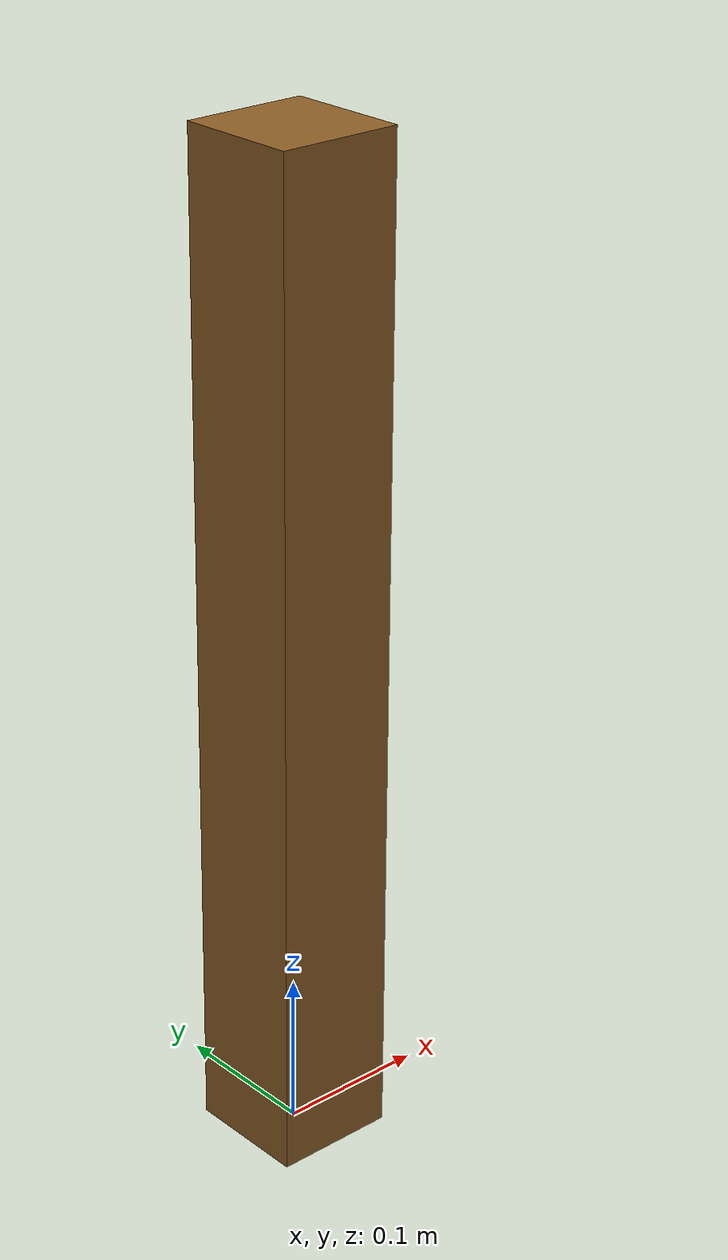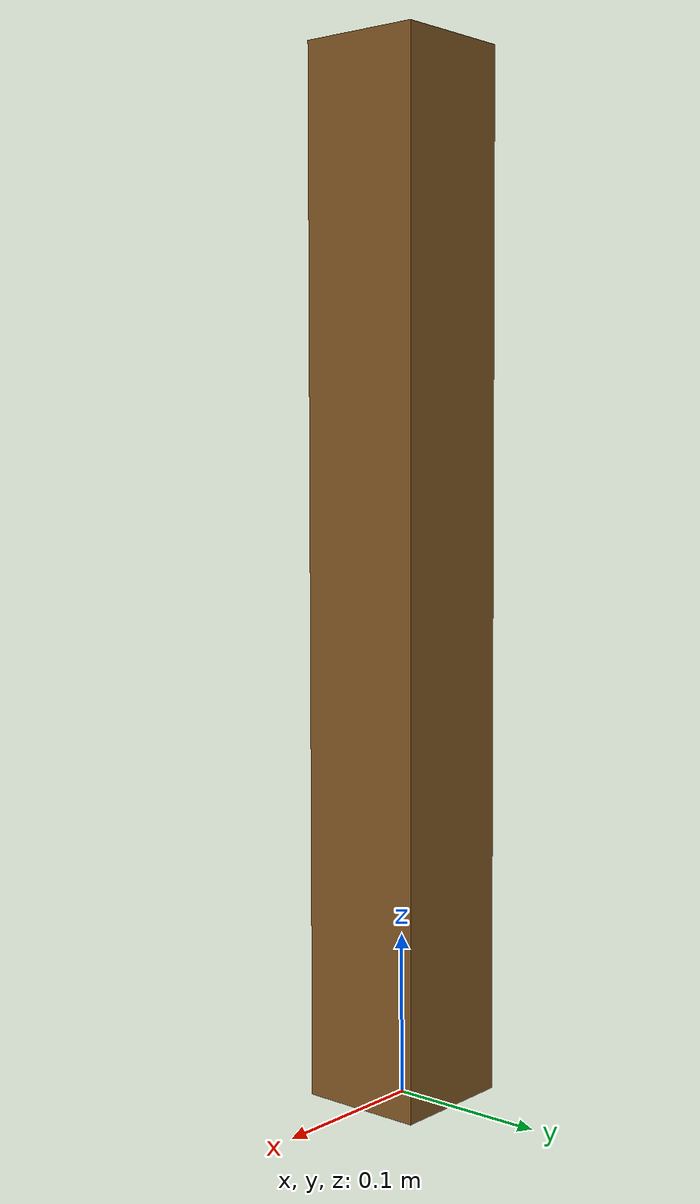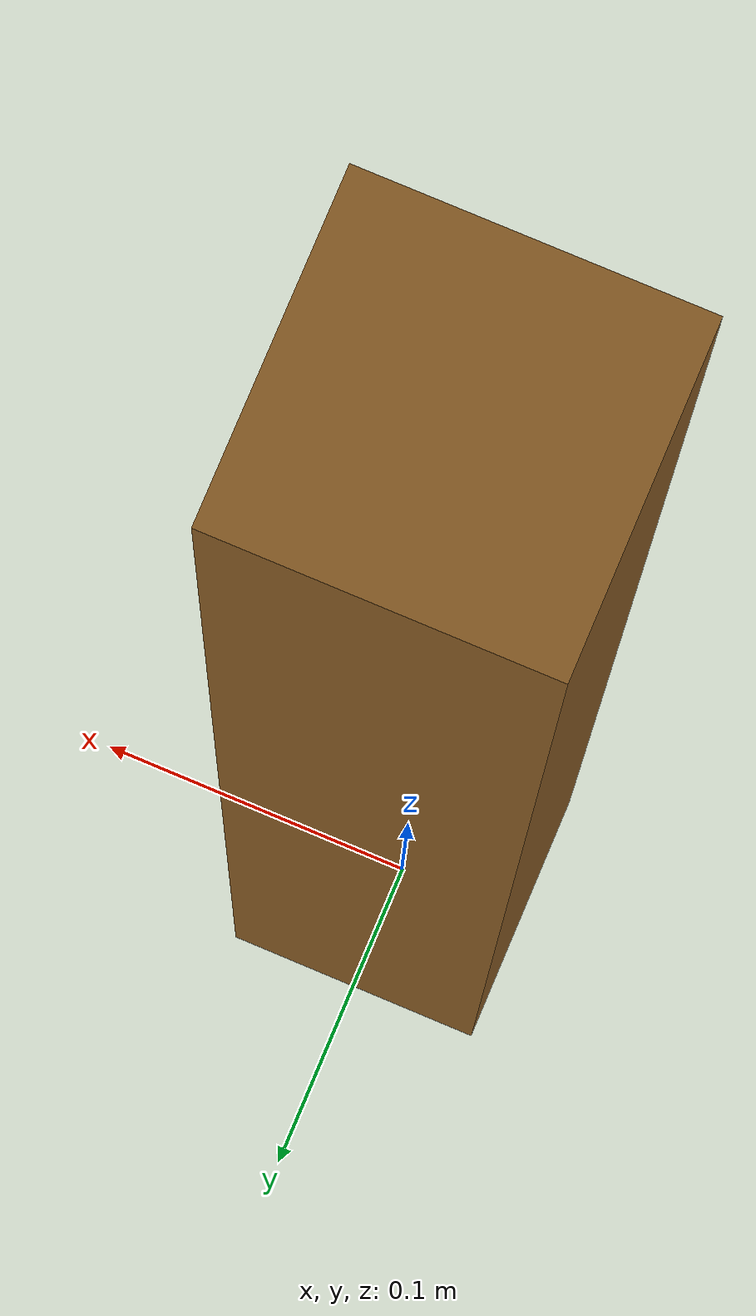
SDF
<?xml version="1.0" ?>
<sdf version="1.7">

  <!-- ── Static pedestal ─────────────────────────────────── -->
  <model name="pickup_pedestal">
    <static>true</static>
    <link name="link">
      <!-- Thin post: 8×8cm footprint, 0.647m tall → top surface at 0.647m -->
      <visual name="vis">
        <pose>0 0 0.3235 0 0 0</pose>
        <geometry><box><size>0.08 0.08 0.647</size></box></geometry>
        <material>
          <diffuse>0.55 0.37 0.15 1</diffuse>
        </material>
      </visual>
      <collision name="col">
        <pose>0 0 0.3235 0 0 0</pose>
        <geometry><box><size>0.08 0.08 0.647</size></box></geometry>
      </collision>
    </link>
  </model>

</sdf>
